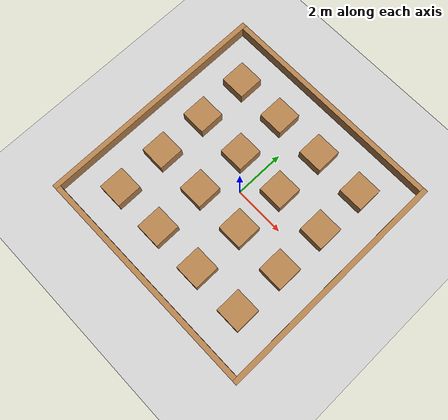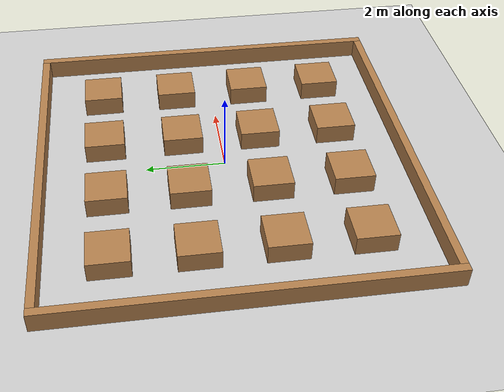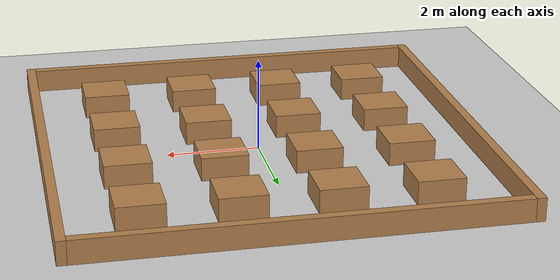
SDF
<sdf version='1.4'>
  <world name='default'>
    <!-- A global light source -->
    <include>
      <uri>model://sun</uri>
    </include>

    <!-- A ground plane -->
    <include>
      <uri>model://ground_plane</uri>
    </include>

    <physics type="ode">
      <real_time_update_rate>200.0</real_time_update_rate>
      <max_step_size>0.005</max_step_size>
      <real_time_factor>1</real_time_factor>
      <ode>
        <solver>
          <type>quick</type>
          <iters>100</iters>
          <precon_iters>0</precon_iters>
          <sor>1</sor>
          <use_dynamic_moi_rescaling>1</use_dynamic_moi_rescaling>
        </solver>
      </ode>
    </physics>

    <!-- A turtlebot symbol -->
    <include>
      <uri>model://map_5x5</uri>
    </include>

    <scene>
      <ambient>0.4 0.4 0.4 1</ambient>
      <background>0.7 0.7 0.7 1</background>
      <shadows>true</shadows>
    </scene>

    <gui fullscreen='0'>
      <camera name='user_camera'>
        <pose>0.0 0.0 17.0 0 1.5708 -1.5708</pose>
        <view_controller>orbit</view_controller>
      </camera>
    </gui>
  </world>
</sdf>

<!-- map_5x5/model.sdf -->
<sdf version='1.5'>
  <model name='clobot_test_map'>
    <static>1</static>

    <link name='Wall_EAST'>
      <collision name='Wall_EAST_Collision'>
        <pose>4.6 0 0.25 0 0 0</pose>
        <geometry>
          <box>
            <size>0.2 9.4 0.5</size>
          </box>
        </geometry>
        <surface>
          <friction>
            <ode>
              <mu>1</mu>
              <mu2>1</mu2>
              <fdir1>0 0 0</fdir1>
              <slip1>0</slip1>
              <slip2>0</slip2>
            </ode>
            <torsional>
              <coefficient>1</coefficient>
              <patch_radius>0</patch_radius>
              <surface_radius>0</surface_radius>
              <use_patch_radius>1</use_patch_radius>
              <ode>
                <slip>0</slip>
              </ode>
            </torsional>
          </friction>
          <bounce>
            <restitution_coefficient>0</restitution_coefficient>
            <threshold>1e+06</threshold>
          </bounce>
          <contact>
            <collide_without_contact>0</collide_without_contact>
            <collide_without_contact_bitmask>1</collide_without_contact_bitmask>
            <collide_bitmask>1</collide_bitmask>
            <ode>
              <soft_cfm>0</soft_cfm>
              <soft_erp>0.2</soft_erp>
              <kp>1e+13</kp>
              <kd>1</kd>
              <max_vel>0.01</max_vel>
              <min_depth>0</min_depth>
            </ode>
            <bullet>
              <split_impulse>1</split_impulse>
              <split_impulse_penetration_threshold>-0.01</split_impulse_penetration_threshold>
              <soft_cfm>0</soft_cfm>
              <soft_erp>0.2</soft_erp>
              <kp>1e+13</kp>
              <kd>1</kd>
            </bullet>
          </contact>
        </surface>
      </collision>

      <visual name='Wall_EAST_Visual'>
        <pose>4.6 0 0.25 0 0 0</pose>
        <geometry>
          <box>
            <size>0.2 9.4 0.5</size>
          </box>
        </geometry>
        <material>
          <script>
            <name>Gazebo/WoodFloor</name>
          </script>
        </material>
      </visual>
    </link>

    <link name='Wall_WEST'>
      <collision name='Wall_WEST_Collision'>
        <pose>-4.6 0 0.25 0 0 0</pose>
        <geometry>
          <box>
            <size>0.2 9.4 0.5</size>
          </box>
        </geometry>
        <surface>
          <friction>
            <ode>
              <mu>1</mu>
              <mu2>1</mu2>
              <fdir1>0 0 0</fdir1>
              <slip1>0</slip1>
              <slip2>0</slip2>
            </ode>
            <torsional>
              <coefficient>1</coefficient>
              <patch_radius>0</patch_radius>
              <surface_radius>0</surface_radius>
              <use_patch_radius>1</use_patch_radius>
              <ode>
                <slip>0</slip>
              </ode>
            </torsional>
          </friction>
          <bounce>
            <restitution_coefficient>0</restitution_coefficient>
            <threshold>1e+06</threshold>
          </bounce>
          <contact>
            <collide_without_contact>0</collide_without_contact>
            <collide_without_contact_bitmask>1</collide_without_contact_bitmask>
            <collide_bitmask>1</collide_bitmask>
            <ode>
              <soft_cfm>0</soft_cfm>
              <soft_erp>0.2</soft_erp>
              <kp>1e+13</kp>
              <kd>1</kd>
              <max_vel>0.01</max_vel>
              <min_depth>0</min_depth>
            </ode>
            <bullet>
              <split_impulse>1</split_impulse>
              <split_impulse_penetration_threshold>-0.01</split_impulse_penetration_threshold>
              <soft_cfm>0</soft_cfm>
              <soft_erp>0.2</soft_erp>
              <kp>1e+13</kp>
              <kd>1</kd>
            </bullet>
          </contact>
        </surface>
      </collision>

      <visual name='Wall_SOUTH_Visual'>
        <pose>-4.6 0 0.25 0 0 0</pose>
        <geometry>
          <box>
            <size>0.2 9.4 0.5</size>
          </box>
        </geometry>
        <material>
          <script>
            <name>Gazebo/WoodFloor</name>
          </script>
        </material>
      </visual>
    </link>

    <link name='Wall_SOUTH'>
      <collision name='Wall_SOUTH_Collision'>
        <pose>0 -4.6 0.25 0 0 0</pose>
        <geometry>
          <box>
            <size>9 0.2 0.5</size>
          </box>
        </geometry>
        <surface>
          <friction>
            <ode>
              <mu>1</mu>
              <mu2>1</mu2>
              <fdir1>0 0 0</fdir1>
              <slip1>0</slip1>
              <slip2>0</slip2>
            </ode>
            <torsional>
              <coefficient>1</coefficient>
              <patch_radius>0</patch_radius>
              <surface_radius>0</surface_radius>
              <use_patch_radius>1</use_patch_radius>
              <ode>
                <slip>0</slip>
              </ode>
            </torsional>
          </friction>
          <bounce>
            <restitution_coefficient>0</restitution_coefficient>
            <threshold>1e+06</threshold>
          </bounce>
          <contact>
            <collide_without_contact>0</collide_without_contact>
            <collide_without_contact_bitmask>1</collide_without_contact_bitmask>
            <collide_bitmask>1</collide_bitmask>
            <ode>
              <soft_cfm>0</soft_cfm>
              <soft_erp>0.2</soft_erp>
              <kp>1e+13</kp>
              <kd>1</kd>
              <max_vel>0.01</max_vel>
              <min_depth>0</min_depth>
            </ode>
            <bullet>
              <split_impulse>1</split_impulse>
              <split_impulse_penetration_threshold>-0.01</split_impulse_penetration_threshold>
              <soft_cfm>0</soft_cfm>
              <soft_erp>0.2</soft_erp>
              <kp>1e+13</kp>
              <kd>1</kd>
            </bullet>
          </contact>
        </surface>
      </collision>

      <visual name='Wall_SOUTH_Visual'>
        <pose>0 -4.6 0.25 0 0 0</pose>
        <geometry>
          <box>
            <size>9 0.2 0.5</size>
          </box>
        </geometry>
        <material>
          <script>
            <name>Gazebo/WoodFloor</name>
          </script>
        </material>
      </visual>
    </link>

    <link name='Wall_NORTH'>
      <collision name='Wall_NORTH_Collision'>
        <pose>0 4.6 0.25 0 0 0</pose>
        <geometry>
          <box>
            <size>9 0.2 0.5</size>
          </box>
        </geometry>
        <surface>
          <friction>
            <ode>
              <mu>1</mu>
              <mu2>1</mu2>
              <fdir1>0 0 0</fdir1>
              <slip1>0</slip1>
              <slip2>0</slip2>
            </ode>
            <torsional>
              <coefficient>1</coefficient>
              <patch_radius>0</patch_radius>
              <surface_radius>0</surface_radius>
              <use_patch_radius>1</use_patch_radius>
              <ode>
                <slip>0</slip>
              </ode>
            </torsional>
          </friction>
          <bounce>
            <restitution_coefficient>0</restitution_coefficient>
            <threshold>1e+06</threshold>
          </bounce>
          <contact>
            <collide_without_contact>0</collide_without_contact>
            <collide_without_contact_bitmask>1</collide_without_contact_bitmask>
            <collide_bitmask>1</collide_bitmask>
            <ode>
              <soft_cfm>0</soft_cfm>
              <soft_erp>0.2</soft_erp>
              <kp>1e+13</kp>
              <kd>1</kd>
              <max_vel>0.01</max_vel>
              <min_depth>0</min_depth>
            </ode>
            <bullet>
              <split_impulse>1</split_impulse>
              <split_impulse_penetration_threshold>-0.01</split_impulse_penetration_threshold>
              <soft_cfm>0</soft_cfm>
              <soft_erp>0.2</soft_erp>
              <kp>1e+13</kp>
              <kd>1</kd>
            </bullet>
          </contact>
        </surface>
      </collision>

      <visual name='Wall_NORTH_Visual'>
        <pose>0 4.6 0.25 0 0 0</pose>
        <geometry>
          <box>
            <size>9 0.2 0.5</size>
          </box>
        </geometry>
        <material>
          <script>
            <name>Gazebo/WoodFloor</name>
          </script>
        </material>
      </visual>
    </link>

    <link name='Box1'>
      <collision name='Box1_Collision'>
        <pose>-3 3 0.25 0 0 0</pose>
        <geometry>
          <box>
            <size>1 1 0.5</size>
          </box>
        </geometry>
        <surface>
          <friction>
            <ode>
              <mu>1</mu>
              <mu2>1</mu2>
              <fdir1>0 0 0</fdir1>
              <slip1>0</slip1>
              <slip2>0</slip2>
            </ode>
            <torsional>
              <coefficient>1</coefficient>
              <patch_radius>0</patch_radius>
              <surface_radius>0</surface_radius>
              <use_patch_radius>1</use_patch_radius>
              <ode>
                <slip>0</slip>
              </ode>
            </torsional>
          </friction>
          <bounce>
            <restitution_coefficient>0</restitution_coefficient>
            <threshold>1e+06</threshold>
          </bounce>
          <contact>
            <collide_without_contact>0</collide_without_contact>
            <collide_without_contact_bitmask>1</collide_without_contact_bitmask>
            <collide_bitmask>1</collide_bitmask>
            <ode>
              <soft_cfm>0</soft_cfm>
              <soft_erp>0.2</soft_erp>
              <kp>1e+13</kp>
              <kd>1</kd>
              <max_vel>0.01</max_vel>
              <min_depth>0</min_depth>
            </ode>
            <bullet>
              <split_impulse>1</split_impulse>
              <split_impulse_penetration_threshold>-0.01</split_impulse_penetration_threshold>
              <soft_cfm>0</soft_cfm>
              <soft_erp>0.2</soft_erp>
              <kp>1e+13</kp>
              <kd>1</kd>
            </bullet>
          </contact>
        </surface>
      </collision>

      <visual name='Box1_Visual'>
        <pose>-3 3 0.25 0 0 0</pose>
        <geometry>
          <box>
            <size>1 1 0.5</size>
          </box>
        </geometry>
        <material>
          <script>
            <name>Gazebo/WoodFloor</name>
          </script>
        </material>
      </visual>
    </link>

    <link name='Box2'>
      <collision name='Box2_Collision'>
        <pose>-1 3 0.25 0 0 0</pose>
        <geometry>
          <box>
            <size>1 1 0.5</size>
          </box>
        </geometry>
        <surface>
          <friction>
            <ode>
              <mu>1</mu>
              <mu2>1</mu2>
              <fdir1>0 0 0</fdir1>
              <slip1>0</slip1>
              <slip2>0</slip2>
            </ode>
            <torsional>
              <coefficient>1</coefficient>
              <patch_radius>0</patch_radius>
              <surface_radius>0</surface_radius>
              <use_patch_radius>1</use_patch_radius>
              <ode>
                <slip>0</slip>
              </ode>
            </torsional>
          </friction>
          <bounce>
            <restitution_coefficient>0</restitution_coefficient>
            <threshold>1e+06</threshold>
          </bounce>
          <contact>
            <collide_without_contact>0</collide_without_contact>
            <collide_without_contact_bitmask>1</collide_without_contact_bitmask>
            <collide_bitmask>1</collide_bitmask>
            <ode>
              <soft_cfm>0</soft_cfm>
              <soft_erp>0.2</soft_erp>
              <kp>1e+13</kp>
              <kd>1</kd>
              <max_vel>0.01</max_vel>
              <min_depth>0</min_depth>
            </ode>
            <bullet>
              <split_impulse>1</split_impulse>
              <split_impulse_penetration_threshold>-0.01</split_impulse_penetration_threshold>
              <soft_cfm>0</soft_cfm>
              <soft_erp>0.2</soft_erp>
              <kp>1e+13</kp>
              <kd>1</kd>
            </bullet>
          </contact>
        </surface>
      </collision>

      <visual name='Box2_Visual'>
        <pose>-1 3 0.25 0 0 0</pose>
        <geometry>
          <box>
            <size>1 1 0.5</size>
          </box>
        </geometry>
        <material>
          <script>
            <name>Gazebo/WoodFloor</name>
          </script>
        </material>
      </visual>
    </link>

    <link name='Box3'>
      <collision name='Box3_Collision'>
        <pose>1 3 0.25 0 0 0</pose>
        <geometry>
          <box>
            <size>1 1 0.5</size>
          </box>
        </geometry>
        <surface>
          <friction>
            <ode>
              <mu>1</mu>
              <mu2>1</mu2>
              <fdir1>0 0 0</fdir1>
              <slip1>0</slip1>
              <slip2>0</slip2>
            </ode>
            <torsional>
              <coefficient>1</coefficient>
              <patch_radius>0</patch_radius>
              <surface_radius>0</surface_radius>
              <use_patch_radius>1</use_patch_radius>
              <ode>
                <slip>0</slip>
              </ode>
            </torsional>
          </friction>
          <bounce>
            <restitution_coefficient>0</restitution_coefficient>
            <threshold>1e+06</threshold>
          </bounce>
          <contact>
            <collide_without_contact>0</collide_without_contact>
            <collide_without_contact_bitmask>1</collide_without_contact_bitmask>
            <collide_bitmask>1</collide_bitmask>
            <ode>
              <soft_cfm>0</soft_cfm>
              <soft_erp>0.2</soft_erp>
              <kp>1e+13</kp>
              <kd>1</kd>
              <max_vel>0.01</max_vel>
              <min_depth>0</min_depth>
            </ode>
            <bullet>
              <split_impulse>1</split_impulse>
              <split_impulse_penetration_threshold>-0.01</split_impulse_penetration_threshold>
              <soft_cfm>0</soft_cfm>
              <soft_erp>0.2</soft_erp>
              <kp>1e+13</kp>
              <kd>1</kd>
            </bullet>
          </contact>
        </surface>
      </collision>

      <visual name='Box3_Visual'>
        <pose>1 3 0.25 0 0 0</pose>
        <geometry>
          <box>
            <size>1 1 0.5</size>
          </box>
        </geometry>
        <material>
          <script>
            <name>Gazebo/WoodFloor</name>
          </script>
        </material>
      </visual>
    </link>

    <link name='Box4'>
      <collision name='Box4_Collision'>
        <pose>3 3 0.25 0 0 0</pose>
        <geometry>
          <box>
            <size>1 1 0.5</size>
          </box>
        </geometry>
        <surface>
          <friction>
            <ode>
              <mu>1</mu>
              <mu2>1</mu2>
              <fdir1>0 0 0</fdir1>
              <slip1>0</slip1>
              <slip2>0</slip2>
            </ode>
            <torsional>
              <coefficient>1</coefficient>
              <patch_radius>0</patch_radius>
              <surface_radius>0</surface_radius>
              <use_patch_radius>1</use_patch_radius>
              <ode>
                <slip>0</slip>
              </ode>
            </torsional>
          </friction>
          <bounce>
            <restitution_coefficient>0</restitution_coefficient>
            <threshold>1e+06</threshold>
          </bounce>
          <contact>
            <collide_without_contact>0</collide_without_contact>
            <collide_without_contact_bitmask>1</collide_without_contact_bitmask>
            <collide_bitmask>1</collide_bitmask>
            <ode>
              <soft_cfm>0</soft_cfm>
              <soft_erp>0.2</soft_erp>
              <kp>1e+13</kp>
              <kd>1</kd>
              <max_vel>0.01</max_vel>
              <min_depth>0</min_depth>
            </ode>
            <bullet>
              <split_impulse>1</split_impulse>
              <split_impulse_penetration_threshold>-0.01</split_impulse_penetration_threshold>
              <soft_cfm>0</soft_cfm>
              <soft_erp>0.2</soft_erp>
              <kp>1e+13</kp>
              <kd>1</kd>
            </bullet>
          </contact>
        </surface>
      </collision>

      <visual name='Box4_Visual'>
        <pose>3 3 0.25 0 0 0</pose>
        <geometry>
          <box>
            <size>1 1 0.5</size>
          </box>
        </geometry>
        <material>
          <script>
            <name>Gazebo/WoodFloor</name>
          </script>
        </material>
      </visual>
    </link>

    <link name='Box5'>
      <collision name='Box5_Collision'>
        <pose>-3 1 0.25 0 0 0</pose>
        <geometry>
          <box>
            <size>1 1 0.5</size>
          </box>
        </geometry>
        <surface>
          <friction>
            <ode>
              <mu>1</mu>
              <mu2>1</mu2>
              <fdir1>0 0 0</fdir1>
              <slip1>0</slip1>
              <slip2>0</slip2>
            </ode>
            <torsional>
              <coefficient>1</coefficient>
              <patch_radius>0</patch_radius>
              <surface_radius>0</surface_radius>
              <use_patch_radius>1</use_patch_radius>
              <ode>
                <slip>0</slip>
              </ode>
            </torsional>
          </friction>
          <bounce>
            <restitution_coefficient>0</restitution_coefficient>
            <threshold>1e+06</threshold>
          </bounce>
          <contact>
            <collide_without_contact>0</collide_without_contact>
            <collide_without_contact_bitmask>1</collide_without_contact_bitmask>
            <collide_bitmask>1</collide_bitmask>
            <ode>
              <soft_cfm>0</soft_cfm>
              <soft_erp>0.2</soft_erp>
              <kp>1e+13</kp>
              <kd>1</kd>
              <max_vel>0.01</max_vel>
              <min_depth>0</min_depth>
            </ode>
            <bullet>
              <split_impulse>1</split_impulse>
              <split_impulse_penetration_threshold>-0.01</split_impulse_penetration_threshold>
              <soft_cfm>0</soft_cfm>
              <soft_erp>0.2</soft_erp>
              <kp>1e+13</kp>
              <kd>1</kd>
            </bullet>
          </contact>
        </surface>
      </collision>

      <visual name='Box5_Visual'>
        <pose>-3 1 0.25 0 0 0</pose>
        <geometry>
          <box>
            <size>1 1 0.5</size>
          </box>
        </geometry>
        <material>
          <script>
            <name>Gazebo/WoodFloor</name>
          </script>
        </material>
      </visual>
    </link>

    <link name='Box6'>
      <collision name='Box6_Collision'>
        <pose>-1 1 0.25 0 0 0</pose>
        <geometry>
          <box>
            <size>1 1 0.5</size>
          </box>
        </geometry>
        <surface>
          <friction>
            <ode>
              <mu>1</mu>
              <mu2>1</mu2>
              <fdir1>0 0 0</fdir1>
              <slip1>0</slip1>
              <slip2>0</slip2>
            </ode>
            <torsional>
              <coefficient>1</coefficient>
              <patch_radius>0</patch_radius>
              <surface_radius>0</surface_radius>
              <use_patch_radius>1</use_patch_radius>
              <ode>
                <slip>0</slip>
              </ode>
            </torsional>
          </friction>
          <bounce>
            <restitution_coefficient>0</restitution_coefficient>
            <threshold>1e+06</threshold>
          </bounce>
          <contact>
            <collide_without_contact>0</collide_without_contact>
            <collide_without_contact_bitmask>1</collide_without_contact_bitmask>
            <collide_bitmask>1</collide_bitmask>
            <ode>
              <soft_cfm>0</soft_cfm>
              <soft_erp>0.2</soft_erp>
              <kp>1e+13</kp>
              <kd>1</kd>
              <max_vel>0.01</max_vel>
              <min_depth>0</min_depth>
            </ode>
            <bullet>
              <split_impulse>1</split_impulse>
              <split_impulse_penetration_threshold>-0.01</split_impulse_penetration_threshold>
              <soft_cfm>0</soft_cfm>
              <soft_erp>0.2</soft_erp>
              <kp>1e+13</kp>
              <kd>1</kd>
            </bullet>
          </contact>
        </surface>
      </collision>

      <visual name='Box6_Visual'>
        <pose>-1 1 0.25 0 0 0</pose>
        <geometry>
          <box>
            <size>1 1 0.5</size>
          </box>
        </geometry>
        <material>
          <script>
            <name>Gazebo/WoodFloor</name>
          </script>
        </material>
      </visual>
    </link>

    <link name='Box7'>
      <collision name='Box7_Collision'>
        <pose>1 1 0.25 0 0 0</pose>
        <geometry>
          <box>
            <size>1 1 0.5</size>
          </box>
        </geometry>
        <surface>
          <friction>
            <ode>
              <mu>1</mu>
              <mu2>1</mu2>
              <fdir1>0 0 0</fdir1>
              <slip1>0</slip1>
              <slip2>0</slip2>
            </ode>
            <torsional>
              <coefficient>1</coefficient>
              <patch_radius>0</patch_radius>
              <surface_radius>0</surface_radius>
              <use_patch_radius>1</use_patch_radius>
              <ode>
                <slip>0</slip>
              </ode>
            </torsional>
          </friction>
          <bounce>
            <restitution_coefficient>0</restitution_coefficient>
            <threshold>1e+06</threshold>
          </bounce>
          <contact>
            <collide_without_contact>0</collide_without_contact>
            <collide_without_contact_bitmask>1</collide_without_contact_bitmask>
            <collide_bitmask>1</collide_bitmask>
            <ode>
              <soft_cfm>0</soft_cfm>
              <soft_erp>0.2</soft_erp>
              <kp>1e+13</kp>
              <kd>1</kd>
              <max_vel>0.01</max_vel>
              <min_depth>0</min_depth>
            </ode>
            <bullet>
              <split_impulse>1</split_impulse>
              <split_impulse_penetration_threshold>-0.01</split_impulse_penetration_threshold>
              <soft_cfm>0</soft_cfm>
              <soft_erp>0.2</soft_erp>
              <kp>1e+13</kp>
              <kd>1</kd>
            </bullet>
          </contact>
        </surface>
      </collision>

      <visual name='Box7_Visual'>
        <pose>1 1 0.25 0 0 0</pose>
        <geometry>
          <box>
            <size>1 1 0.5</size>
          </box>
        </geometry>
        <material>
          <script>
            <name>Gazebo/WoodFloor</name>
          </script>
        </material>
      </visual>
    </link>

    <link name='Box8'>
      <collision name='Box8_Collision'>
        <pose>3 1 0.25 0 0 0</pose>
        <geometry>
          <box>
            <size>1 1 0.5</size>
          </box>
        </geometry>
        <surface>
          <friction>
            <ode>
              <mu>1</mu>
              <mu2>1</mu2>
              <fdir1>0 0 0</fdir1>
              <slip1>0</slip1>
              <slip2>0</slip2>
            </ode>
            <torsional>
              <coefficient>1</coefficient>
              <patch_radius>0</patch_radius>
              <surface_radius>0</surface_radius>
              <use_patch_radius>1</use_patch_radius>
              <ode>
                <slip>0</slip>
              </ode>
            </torsional>
          </friction>
          <bounce>
            <restitution_coefficient>0</restitution_coefficient>
            <threshold>1e+06</threshold>
          </bounce>
          <contact>
            <collide_without_contact>0</collide_without_contact>
            <collide_without_contact_bitmask>1</collide_without_contact_bitmask>
            <collide_bitmask>1</collide_bitmask>
            <ode>
              <soft_cfm>0</soft_cfm>
              <soft_erp>0.2</soft_erp>
              <kp>1e+13</kp>
              <kd>1</kd>
              <max_vel>0.01</max_vel>
              <min_depth>0</min_depth>
            </ode>
            <bullet>
              <split_impulse>1</split_impulse>
              <split_impulse_penetration_threshold>-0.01</split_impulse_penetration_threshold>
              <soft_cfm>0</soft_cfm>
              <soft_erp>0.2</soft_erp>
              <kp>1e+13</kp>
              <kd>1</kd>
            </bullet>
          </contact>
        </surface>
      </collision>

      <visual name='Box8_Visual'>
        <pose>3 1 0.25 0 0 0</pose>
        <geometry>
          <box>
            <size>1 1 0.5</size>
          </box>
        </geometry>
        <material>
          <script>
            <name>Gazebo/WoodFloor</name>
          </script>
        </material>
      </visual>
    </link>

    <link name='Box9'>
      <collision name='Box9_Collision'>
        <pose>-3 -1 0.25 0 0 0</pose>
        <geometry>
          <box>
            <size>1 1 0.5</size>
          </box>
        </geometry>
        <surface>
          <friction>
            <ode>
              <mu>1</mu>
              <mu2>1</mu2>
              <fdir1>0 0 0</fdir1>
              <slip1>0</slip1>
              <slip2>0</slip2>
            </ode>
            <torsional>
              <coefficient>1</coefficient>
              <patch_radius>0</patch_radius>
              <surface_radius>0</surface_radius>
              <use_patch_radius>1</use_patch_radius>
              <ode>
                <slip>0</slip>
              </ode>
            </torsional>
          </friction>
          <bounce>
            <restitution_coefficient>0</restitution_coefficient>
            <threshold>1e+06</threshold>
          </bounce>
          <contact>
            <collide_without_contact>0</collide_without_contact>
            <collide_without_contact_bitmask>1</collide_without_contact_bitmask>
            <collide_bitmask>1</collide_bitmask>
            <ode>
              <soft_cfm>0</soft_cfm>
              <soft_erp>0.2</soft_erp>
              <kp>1e+13</kp>
              <kd>1</kd>
              <max_vel>0.01</max_vel>
              <min_depth>0</min_depth>
            </ode>
            <bullet>
              <split_impulse>1</split_impulse>
              <split_impulse_penetration_threshold>-0.01</split_impulse_penetration_threshold>
              <soft_cfm>0</soft_cfm>
              <soft_erp>0.2</soft_erp>
              <kp>1e+13</kp>
              <kd>1</kd>
            </bullet>
          </contact>
        </surface>
      </collision>

      <visual name='Box9_Visual'>
        <pose>-3 -1 0.25 0 0 0</pose>
        <geometry>
          <box>
            <size>1 1 0.5</size>
          </box>
        </geometry>
        <material>
          <script>
            <name>Gazebo/WoodFloor</name>
          </script>
        </material>
      </visual>
    </link>

    <link name='Box10'>
      <collision name='Box10_Collision'>
        <pose>-1 -1 0.25 0 0 0</pose>
        <geometry>
          <box>
            <size>1 1 0.5</size>
          </box>
        </geometry>
        <surface>
          <friction>
            <ode>
              <mu>1</mu>
              <mu2>1</mu2>
              <fdir1>0 0 0</fdir1>
              <slip1>0</slip1>
              <slip2>0</slip2>
            </ode>
            <torsional>
              <coefficient>1</coefficient>
              <patch_radius>0</patch_radius>
              <surface_radius>0</surface_radius>
              <use_patch_radius>1</use_patch_radius>
              <ode>
                <slip>0</slip>
              </ode>
            </torsional>
          </friction>
          <bounce>
            <restitution_coefficient>0</restitution_coefficient>
            <threshold>1e+06</threshold>
          </bounce>
          <contact>
            <collide_without_contact>0</collide_without_contact>
            <collide_without_contact_bitmask>1</collide_without_contact_bitmask>
            <collide_bitmask>1</collide_bitmask>
            <ode>
              <soft_cfm>0</soft_cfm>
              <soft_erp>0.2</soft_erp>
              <kp>1e+13</kp>
              <kd>1</kd>
              <max_vel>0.01</max_vel>
              <min_depth>0</min_depth>
            </ode>
            <bullet>
              <split_impulse>1</split_impulse>
              <split_impulse_penetration_threshold>-0.01</split_impulse_penetration_threshold>
              <soft_cfm>0</soft_cfm>
              <soft_erp>0.2</soft_erp>
              <kp>1e+13</kp>
              <kd>1</kd>
            </bullet>
          </contact>
        </surface>
      </collision>

      <visual name='Box10_Visual'>
        <pose>-1 -1 0.25 0 0 0</pose>
        <geometry>
          <box>
            <size>1 1 0.5</size>
          </box>
        </geometry>
        <material>
          <script>
            <name>Gazebo/WoodFloor</name>
          </script>
        </material>
      </visual>
    </link>

    <link name='Box11'>
      <collision name='Box11_Collision'>
        <pose>1 -1 0.25 0 0 0</pose>
        <geometry>
          <box>
            <size>1 1 0.5</size>
          </box>
        </geometry>
        <surface>
          <friction>
            <ode>
              <mu>1</mu>
              <mu2>1</mu2>
              <fdir1>0 0 0</fdir1>
              <slip1>0</slip1>
              <slip2>0</slip2>
            </ode>
            <torsional>
              <coefficient>1</coefficient>
              <patch_radius>0</patch_radius>
              <surface_radius>0</surface_radius>
              <use_patch_radius>1</use_patch_radius>
              <ode>
                <slip>0</slip>
              </ode>
            </torsional>
          </friction>
          <bounce>
            <restitution_coefficient>0</restitution_coefficient>
            <threshold>1e+06</threshold>
          </bounce>
          <contact>
            <collide_without_contact>0</collide_without_contact>
            <collide_without_contact_bitmask>1</collide_without_contact_bitmask>
            <collide_bitmask>1</collide_bitmask>
            <ode>
              <soft_cfm>0</soft_cfm>
              <soft_erp>0.2</soft_erp>
              <kp>1e+13</kp>
              <kd>1</kd>
              <max_vel>0.01</max_vel>
              <min_depth>0</min_depth>
            </ode>
            <bullet>
              <split_impulse>1</split_impulse>
              <split_impulse_penetration_threshold>-0.01</split_impulse_penetration_threshold>
              <soft_cfm>0</soft_cfm>
              <soft_erp>0.2</soft_erp>
              <kp>1e+13</kp>
              <kd>1</kd>
            </bullet>
          </contact>
        </surface>
      </collision>

      <visual name='Box11_Visual'>
        <pose>1 -1 0.25 0 0 0</pose>
        <geometry>
          <box>
            <size>1 1 0.5</size>
          </box>
        </geometry>
        <material>
          <script>
            <name>Gazebo/WoodFloor</name>
          </script>
        </material>
      </visual>
    </link>

    <link name='Box12'>
      <collision name='Box12_Collision'>
        <pose>3 -1 0.25 0 0 0</pose>
        <geometry>
          <box>
            <size>1 1 0.5</size>
          </box>
        </geometry>
        <surface>
          <friction>
            <ode>
              <mu>1</mu>
              <mu2>1</mu2>
              <fdir1>0 0 0</fdir1>
              <slip1>0</slip1>
              <slip2>0</slip2>
            </ode>
            <torsional>
              <coefficient>1</coefficient>
              <patch_radius>0</patch_radius>
              <surface_radius>0</surface_radius>
              <use_patch_radius>1</use_patch_radius>
              <ode>
                <slip>0</slip>
              </ode>
            </torsional>
          </friction>
          <bounce>
            <restitution_coefficient>0</restitution_coefficient>
            <threshold>1e+06</threshold>
          </bounce>
          <contact>
            <collide_without_contact>0</collide_without_contact>
            <collide_without_contact_bitmask>1</collide_without_contact_bitmask>
            <collide_bitmask>1</collide_bitmask>
            <ode>
              <soft_cfm>0</soft_cfm>
              <soft_erp>0.2</soft_erp>
              <kp>1e+13</kp>
              <kd>1</kd>
              <max_vel>0.01</max_vel>
              <min_depth>0</min_depth>
            </ode>
            <bullet>
              <split_impulse>1</split_impulse>
              <split_impulse_penetration_threshold>-0.01</split_impulse_penetration_threshold>
              <soft_cfm>0</soft_cfm>
              <soft_erp>0.2</soft_erp>
              <kp>1e+13</kp>
              <kd>1</kd>
            </bullet>
          </contact>
        </surface>
      </collision>

      <visual name='Box12_Visual'>
        <pose>3 -1 0.25 0 0 0</pose>
        <geometry>
          <box>
            <size>1 1 0.5</size>
          </box>
        </geometry>
        <material>
          <script>
            <name>Gazebo/WoodFloor</name>
          </script>
        </material>
      </visual>
    </link>

    <link name='Box13'>
      <collision name='Box13_Collision'>
        <pose>-3 -3 0.25 0 0 0</pose>
        <geometry>
          <box>
            <size>1 1 0.5</size>
          </box>
        </geometry>
        <surface>
          <friction>
            <ode>
              <mu>1</mu>
              <mu2>1</mu2>
              <fdir1>0 0 0</fdir1>
              <slip1>0</slip1>
              <slip2>0</slip2>
            </ode>
            <torsional>
              <coefficient>1</coefficient>
              <patch_radius>0</patch_radius>
              <surface_radius>0</surface_radius>
              <use_patch_radius>1</use_patch_radius>
              <ode>
                <slip>0</slip>
              </ode>
            </torsional>
          </friction>
          <bounce>
            <restitution_coefficient>0</restitution_coefficient>
            <threshold>1e+06</threshold>
          </bounce>
          <contact>
            <collide_without_contact>0</collide_without_contact>
            <collide_without_contact_bitmask>1</collide_without_contact_bitmask>
            <collide_bitmask>1</collide_bitmask>
            <ode>
              <soft_cfm>0</soft_cfm>
              <soft_erp>0.2</soft_erp>
              <kp>1e+13</kp>
              <kd>1</kd>
              <max_vel>0.01</max_vel>
              <min_depth>0</min_depth>
            </ode>
            <bullet>
              <split_impulse>1</split_impulse>
              <split_impulse_penetration_threshold>-0.01</split_impulse_penetration_threshold>
              <soft_cfm>0</soft_cfm>
              <soft_erp>0.2</soft_erp>
              <kp>1e+13</kp>
              <kd>1</kd>
            </bullet>
          </contact>
        </surface>
      </collision>

      <visual name='Box13_Visual'>
        <pose>-3 -3 0.25 0 0 0</pose>
        <geometry>
          <box>
            <size>1 1 0.5</size>
          </box>
        </geometry>
        <material>
          <script>
            <name>Gazebo/WoodFloor</name>
          </script>
        </material>
      </visual>
    </link>

    <link name='Box14'>
      <collision name='Box14_Collision'>
        <pose>-1 -3 0.25 0 0 0</pose>
        <geometry>
          <box>
            <size>1 1 0.5</size>
          </box>
        </geometry>
        <surface>
          <friction>
            <ode>
              <mu>1</mu>
              <mu2>1</mu2>
              <fdir1>0 0 0</fdir1>
              <slip1>0</slip1>
              <slip2>0</slip2>
            </ode>
            <torsional>
              <coefficient>1</coefficient>
              <patch_radius>0</patch_radius>
              <surface_radius>0</surface_radius>
              <use_patch_radius>1</use_patch_radius>
              <ode>
                <slip>0</slip>
              </ode>
            </torsional>
          </friction>
          <bounce>
            <restitution_coefficient>0</restitution_coefficient>
            <threshold>1e+06</threshold>
          </bounce>
          <contact>
            <collide_without_contact>0</collide_without_contact>
            <collide_without_contact_bitmask>1</collide_without_contact_bitmask>
            <collide_bitmask>1</collide_bitmask>
            <ode>
              <soft_cfm>0</soft_cfm>
              <soft_erp>0.2</soft_erp>
              <kp>1e+13</kp>
              <kd>1</kd>
              <max_vel>0.01</max_vel>
              <min_depth>0</min_depth>
            </ode>
            <bullet>
              <split_impulse>1</split_impulse>
              <split_impulse_penetration_threshold>-0.01</split_impulse_penetration_threshold>
              <soft_cfm>0</soft_cfm>
              <soft_erp>0.2</soft_erp>
              <kp>1e+13</kp>
              <kd>1</kd>
            </bullet>
          </contact>
        </surface>
      </collision>

      <visual name='Box14_Visual'>
        <pose>-1 -3 0.25 0 0 0</pose>
        <geometry>
          <box>
            <size>1 1 0.5</size>
          </box>
        </geometry>
        <material>
          <script>
            <name>Gazebo/WoodFloor</name>
          </script>
        </material>
      </visual>
    </link>

    <link name='Box15'>
      <collision name='Box15_Collision'>
        <pose>1 -3 0.25 0 0 0</pose>
        <geometry>
          <box>
            <size>1 1 0.5</size>
          </box>
        </geometry>
        <surface>
          <friction>
            <ode>
              <mu>1</mu>
              <mu2>1</mu2>
              <fdir1>0 0 0</fdir1>
              <slip1>0</slip1>
              <slip2>0</slip2>
            </ode>
            <torsional>
              <coefficient>1</coefficient>
              <patch_radius>0</patch_radius>
              <surface_radius>0</surface_radius>
              <use_patch_radius>1</use_patch_radius>
              <ode>
                <slip>0</slip>
              </ode>
            </torsional>
          </friction>
          <bounce>
            <restitution_coefficient>0</restitution_coefficient>
            <threshold>1e+06</threshold>
          </bounce>
          <contact>
            <collide_without_contact>0</collide_without_contact>
            <collide_without_contact_bitmask>1</collide_without_contact_bitmask>
            <collide_bitmask>1</collide_bitmask>
            <ode>
              <soft_cfm>0</soft_cfm>
              <soft_erp>0.2</soft_erp>
              <kp>1e+13</kp>
              <kd>1</kd>
              <max_vel>0.01</max_vel>
              <min_depth>0</min_depth>
            </ode>
            <bullet>
              <split_impulse>1</split_impulse>
              <split_impulse_penetration_threshold>-0.01</split_impulse_penetration_threshold>
              <soft_cfm>0</soft_cfm>
              <soft_erp>0.2</soft_erp>
              <kp>1e+13</kp>
              <kd>1</kd>
            </bullet>
          </contact>
        </surface>
      </collision>

      <visual name='Box15_Visual'>
        <pose>1 -3 0.25 0 0 0</pose>
        <geometry>
          <box>
            <size>1 1 0.5</size>
          </box>
        </geometry>
        <material>
          <script>
            <name>Gazebo/WoodFloor</name>
          </script>
        </material>
      </visual>
    </link>

    <link name='Box16'>
      <collision name='Box16_Collision'>
        <pose>3 -3 0.25 0 0 0</pose>
        <geometry>
          <box>
            <size>1 1 0.5</size>
          </box>
        </geometry>
        <surface>
          <friction>
            <ode>
              <mu>1</mu>
              <mu2>1</mu2>
              <fdir1>0 0 0</fdir1>
              <slip1>0</slip1>
              <slip2>0</slip2>
            </ode>
            <torsional>
              <coefficient>1</coefficient>
              <patch_radius>0</patch_radius>
              <surface_radius>0</surface_radius>
              <use_patch_radius>1</use_patch_radius>
              <ode>
                <slip>0</slip>
              </ode>
            </torsional>
          </friction>
          <bounce>
            <restitution_coefficient>0</restitution_coefficient>
            <threshold>1e+06</threshold>
          </bounce>
          <contact>
            <collide_without_contact>0</collide_without_contact>
            <collide_without_contact_bitmask>1</collide_without_contact_bitmask>
            <collide_bitmask>1</collide_bitmask>
            <ode>
              <soft_cfm>0</soft_cfm>
              <soft_erp>0.2</soft_erp>
              <kp>1e+13</kp>
              <kd>1</kd>
              <max_vel>0.01</max_vel>
              <min_depth>0</min_depth>
            </ode>
            <bullet>
              <split_impulse>1</split_impulse>
              <split_impulse_penetration_threshold>-0.01</split_impulse_penetration_threshold>
              <soft_cfm>0</soft_cfm>
              <soft_erp>0.2</soft_erp>
              <kp>1e+13</kp>
              <kd>1</kd>
            </bullet>
          </contact>
        </surface>
      </collision>

      <visual name='Box16_Visual'>
        <pose>3 -3 0.25 0 0 0</pose>
        <geometry>
          <box>
            <size>1 1 0.5</size>
          </box>
        </geometry>
        <material>
          <script>
            <name>Gazebo/WoodFloor</name>
          </script>
        </material>
      </visual>
    </link>

  </model>
</sdf>
